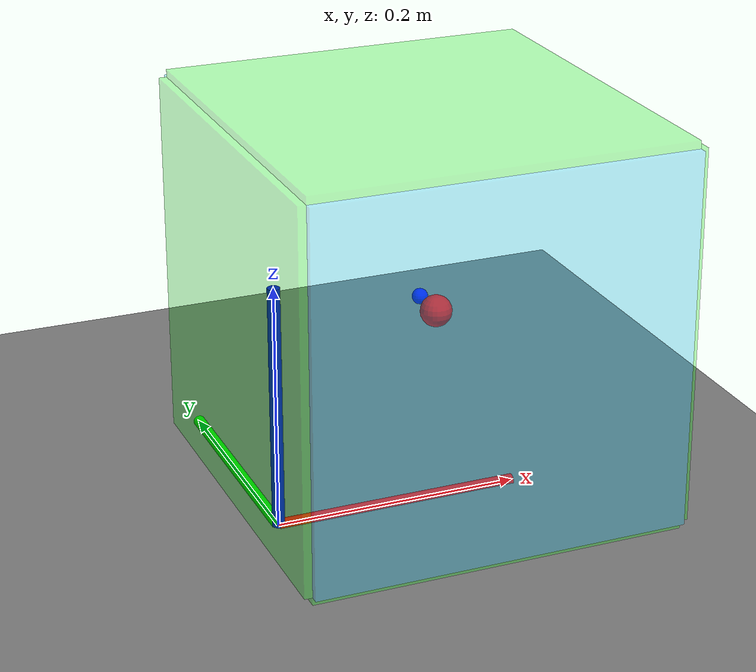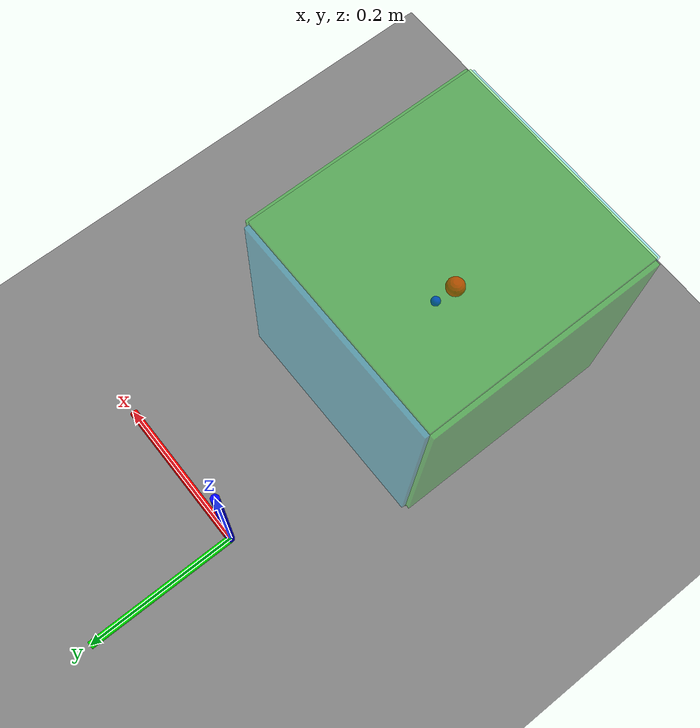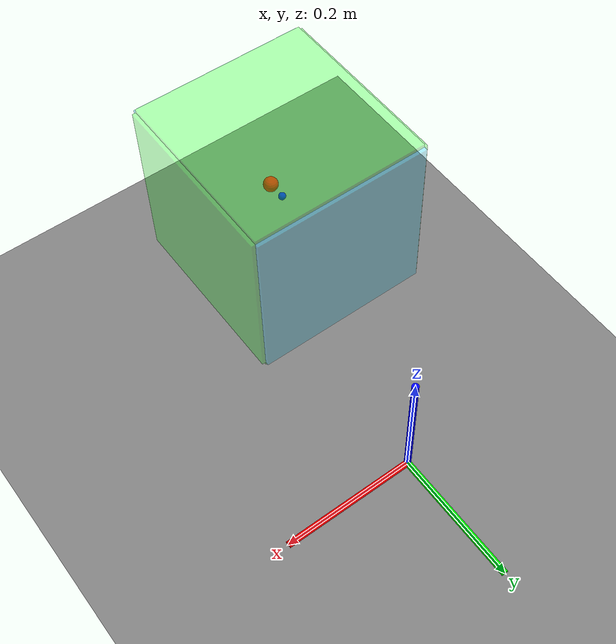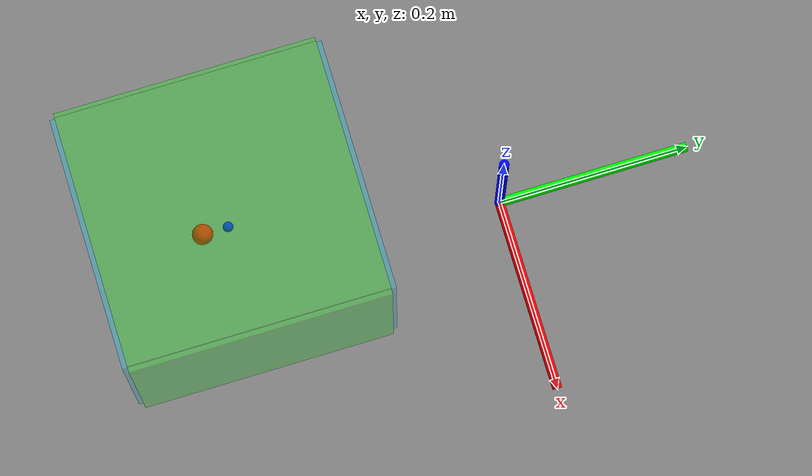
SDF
<?xml version="1.0"?>
<sdf version="1.8">
  <world name="rl_training_world">

    <!-- Physics settings optimized for RL training -->
    <physics name="default_physics" default="true" type="ode">
      <max_step_size>0.001</max_step_size>  <!-- 1ms timestep -->
      <real_time_factor>1.0</real_time_factor>
      <real_time_update_rate>1000</real_time_update_rate>  <!-- 1000 Hz -->

      <ode>
        <solver>
          <type>quick</type>
          <iters>50</iters>
          <sor>1.3</sor>
        </solver>
        <constraints>
          <cfm>0.0</cfm>
          <erp>0.2</erp>
          <contact_max_correcting_vel>100.0</contact_max_correcting_vel>
          <contact_surface_layer>0.001</contact_surface_layer>
        </constraints>
      </ode>
    </physics>

    <!-- Scene settings -->
    <scene>
      <ambient>0.8 0.8 0.8 1.0</ambient>
      <background>0.7 0.7 0.7 1.0</background>
      <shadows>true</shadows>
      <grid>true</grid>
    </scene>

    <!-- Sun light -->
    <light type="directional" name="sun">
      <cast_shadows>true</cast_shadows>
      <pose>0 0 10 0 0 0</pose>
      <diffuse>0.8 0.8 0.8 1</diffuse>
      <specular>0.2 0.2 0.2 1</specular>
      <attenuation>
        <range>1000</range>
        <constant>0.9</constant>
        <linear>0.01</linear>
        <quadratic>0.001</quadratic>
      </attenuation>
      <direction>-0.5 0.1 -0.9</direction>
    </light>

    <!-- Additional lighting for better visualization -->
    <light name="user_light" type="directional">
      <pose>2 2 4 0 0 0</pose>
      <diffuse>0.5 0.5 0.5 1</diffuse>
      <specular>0.1 0.1 0.1 1</specular>
      <direction>-0.5 -0.5 -1</direction>
      <cast_shadows>false</cast_shadows>
    </light>

    <!-- Ground plane -->
    <model name="ground_plane">
      <static>true</static>
      <link name="link">
        <collision name="collision">
          <geometry>
            <plane>
              <normal>0 0 1</normal>
              <size>20 20</size>
            </plane>
          </geometry>
          <surface>
            <friction>
              <ode>
                <mu>1.0</mu>
                <mu2>1.0</mu2>
              </ode>
            </friction>
          </surface>
        </collision>
        <visual name="visual">
          <geometry>
            <plane>
              <normal>0 0 1</normal>
              <size>20 20</size>
            </plane>
          </geometry>
          <material>
            <ambient>0.5 0.5 0.5 1</ambient>
            <diffuse>0.5 0.5 0.5 1</diffuse>
          </material>
        </visual>
      </link>
    </model>

    <!-- World Coordinate Frame at Origin (RGB = XYZ) -->
    <model name="world_frame">
      <static>true</static>
      <pose>0 0 0 0 0 0</pose>

      <!-- X axis (Red) -->
      <link name="x_axis">
        <pose>0.1 0 0 0 1.5708 0</pose>
        <visual name="x_visual">
          <geometry>
            <cylinder>
              <radius>0.005</radius>
              <length>0.2</length>
            </cylinder>
          </geometry>
          <material>
            <ambient>1 0 0 1</ambient>
            <diffuse>1 0 0 1</diffuse>
          </material>
        </visual>
      </link>

      <!-- Y axis (Green) -->
      <link name="y_axis">
        <pose>0 0.1 0 1.5708 0 0</pose>
        <visual name="y_visual">
          <geometry>
            <cylinder>
              <radius>0.005</radius>
              <length>0.2</length>
            </cylinder>
          </geometry>
          <material>
            <ambient>0 1 0 1</ambient>
            <diffuse>0 1 0 1</diffuse>
          </material>
        </visual>
      </link>

      <!-- Z axis (Blue) -->
      <link name="z_axis">
        <pose>0 0 0.1 0 0 0</pose>
        <visual name="z_visual">
          <geometry>
            <cylinder>
              <radius>0.005</radius>
              <length>0.2</length>
            </cylinder>
          </geometry>
          <material>
            <ambient>0 0 1 1</ambient>
            <diffuse>0 0 1 1</diffuse>
          </material>
        </visual>
      </link>
    </model>

    <!-- Include Drawing Surface Model (3D Workspace Visualization) -->
    <!-- X=±12cm, Y=-40 to -15cm, Z=18-42cm -->
    <include>
      <uri>model://drawing_surface</uri>
      <name>drawing_surface</name>
      <pose>0 0 0 0 0 0</pose>  <!-- Model has its own positioning -->
    </include>

    <!-- Workspace Visualization Box (transparent, no collision) -->

    <!-- Target Sphere Model - Static (visual randomization on hold) -->
    <model name="target_sphere">
      <static>true</static>
      <pose>0 -0.3 0.3 0 0 0</pose>

      <link name="sphere_link">
        <pose>0 0 0 0 0 0</pose>
        <visual name="visual">
          <geometry>
            <sphere>
              <radius>0.01</radius>
            </sphere>
          </geometry>
          <material>
            <ambient>1.0 0.0 0.0 1.0</ambient>
            <diffuse>1.0 0.0 0.0 1.0</diffuse>
          </material>
        </visual>
      </link>
    </model>

    <!-- GUI settings for better view of workspace -->
    <gui fullscreen='false'>
      <camera name='user_camera'>
        <!-- Position camera to view robot and drawing surface -->
        <pose>0.6 -0.5 0.5 0 0.4 0.8</pose>
        <view_controller>orbit</view_controller>
        <projection_type>perspective</projection_type>
      </camera>
    </gui>

  </world>
</sdf>

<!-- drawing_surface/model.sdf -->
<sdf version="1.8">
  <model name="drawing_surface">
    <!-- 3D Workspace Visualization Box -->
    <!-- X: ±12cm, Y: -40cm to -15cm, Z: 18cm to 42cm -->
    <!-- Center: X=0, Y=-27.5cm, Z=30cm -->
    <pose>0 0 0 0 0 0</pose>
    <static>true</static>

    <!-- Workspace bounds (green wireframe) -->

    <!-- Top border (Z = 42cm) -->
    <link name="top_border">
      <pose>0 -0.275 0.42 0 0 0</pose>
      <visual name="top_border_visual">
        <geometry>
          <box>
            <size>0.24 0.25 0.01</size>  <!-- 24cm x 25cm x 1cm -->
          </box>
        </geometry>
        <material>
          <ambient>0.0 1.0 0.0 0.3</ambient>
          <diffuse>0.0 1.0 0.0 0.3</diffuse>
        </material>
      </visual>
    </link>

    <!-- Bottom border (Z = 18cm) -->
    <link name="bottom_border">
      <pose>0 -0.275 0.18 0 0 0</pose>
      <visual name="bottom_border_visual">
        <geometry>
          <box>
            <size>0.24 0.25 0.01</size>
          </box>
        </geometry>
        <material>
          <ambient>0.0 1.0 0.0 0.3</ambient>
          <diffuse>0.0 1.0 0.0 0.3</diffuse>
        </material>
      </visual>
    </link>

    <!-- Left border (X = -12cm) -->
    <link name="left_border">
      <pose>-0.12 -0.275 0.30 0 0 0</pose>
      <visual name="left_border_visual">
        <geometry>
          <box>
            <size>0.01 0.25 0.24</size>  <!-- 1cm x 25cm x 24cm -->
          </box>
        </geometry>
        <material>
          <ambient>0.0 1.0 0.0 0.3</ambient>
          <diffuse>0.0 1.0 0.0 0.3</diffuse>
        </material>
      </visual>
    </link>

    <!-- Right border (X = +12cm) -->
    <link name="right_border">
      <pose>0.12 -0.275 0.30 0 0 0</pose>
      <visual name="right_border_visual">
        <geometry>
          <box>
            <size>0.01 0.25 0.24</size>
          </box>
        </geometry>
        <material>
          <ambient>0.0 1.0 0.0 0.3</ambient>
          <diffuse>0.0 1.0 0.0 0.3</diffuse>
        </material>
      </visual>
    </link>

    <!-- Front border (Y = -15cm, closer to robot) -->
    <link name="front_border">
      <pose>0 -0.15 0.30 0 0 0</pose>
      <visual name="front_border_visual">
        <geometry>
          <box>
            <size>0.24 0.01 0.24</size>
          </box>
        </geometry>
        <material>
          <ambient>0.0 0.8 1.0 0.3</ambient>  <!-- Cyan for front -->
          <diffuse>0.0 0.8 1.0 0.3</diffuse>
        </material>
      </visual>
    </link>

    <!-- Back border (Y = -40cm, further from robot) -->
    <link name="back_border">
      <pose>0 -0.40 0.30 0 0 0</pose>
      <visual name="back_border_visual">
        <geometry>
          <box>
            <size>0.24 0.01 0.24</size>
          </box>
        </geometry>
        <material>
          <ambient>0.0 0.8 1.0 0.3</ambient>  <!-- Cyan for back -->
          <diffuse>0.0 0.8 1.0 0.3</diffuse>
        </material>
      </visual>
    </link>

    <!-- Center marker for reference -->
    <link name="center_marker">
      <pose>0 -0.275 0.30 0 0 0</pose>
      <visual name="center_marker_visual">
        <geometry>
          <sphere>
            <radius>0.005</radius>
          </sphere>
        </geometry>
        <material>
          <ambient>0.0 0.0 1.0 1.0</ambient>  <!-- Blue -->
          <diffuse>0.0 0.0 1.0 1.0</diffuse>
        </material>
      </visual>
    </link>

  </model>
</sdf>
